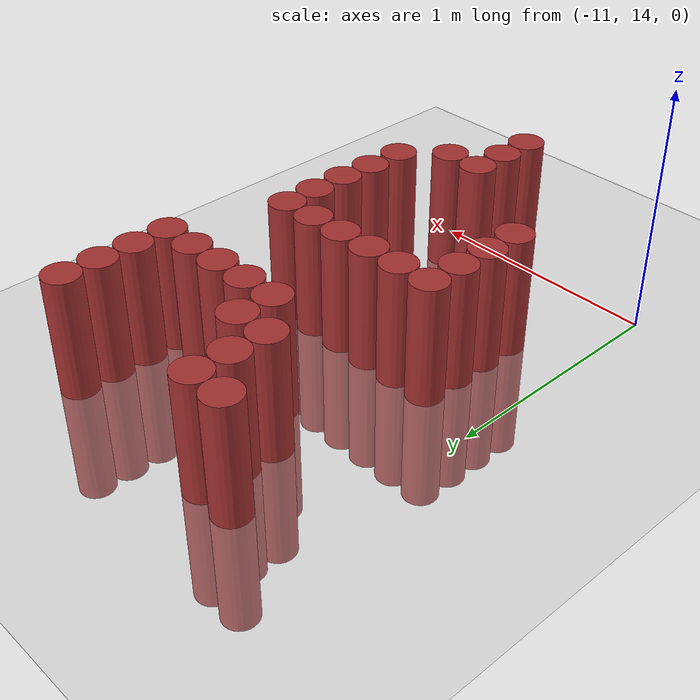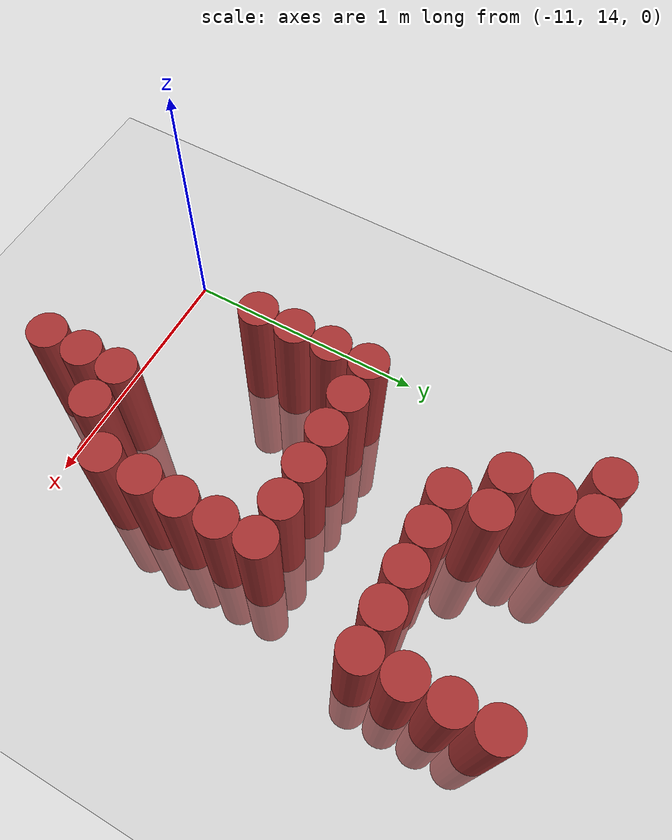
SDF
<sdf version="1.6">
 <world name="default">
  <model name="ground_plane">
   <static>1</static>
   <link name="link">
    <collision name="collision">
     <geometry><plane><normal>0 0 1</normal><size>100 100</size></plane></geometry>
     <surface><friction><ode><mu>100</mu><mu2>50</mu2></ode></friction></surface>
    </collision>
    <visual name="visual">
     <cast_shadows>0</cast_shadows>
     <geometry><plane><normal>0 0 1</normal><size>100 100</size></plane></geometry>
     <material>
      <script><uri>file://media/materials/scripts/gazebo.material</uri><name>Gazebo/Grey</name></script>
     </material>
    </visual>
   </link>
  </model>
  <model name="unit_cylinder_335">
   <static>1</static>
   <pose>-10.725 14.475 0 0 -0 0</pose>
   <link name="link">
    <inertial>
     <mass>1</mass>
     <inertia><ixx>0.145833</ixx><ixy>0</ixy><ixz>0</ixz><iyy>0.145833</iyy><iyz>0</iyz><izz>0.125</izz></inertia>
    </inertial>
    <collision name="collision">
     <geometry><cylinder><radius>0.075</radius><length>1</length></cylinder></geometry>
    </collision>
    <visual name="visual">
     <geometry><cylinder><radius>0.075</radius><length>1</length></cylinder></geometry>
     <material><ambient>0.648 0.192 0.192 1</ambient><diffuse>0.648 0.192 0.192 1</diffuse></material>
     <material>
      <script><name>Gazebo/Grey</name><uri>file://media/materials/scripts/gazebo.material</uri></script>
     </material>
    </visual>
   </link>
  </model>
  <model name="unit_cylinder_336">
   <static>1</static>
   <pose>-10.725 14.625 0 0 -0 0</pose>
   <link name="link">
    <inertial>
     <mass>1</mass>
     <inertia><ixx>0.145833</ixx><ixy>0</ixy><ixz>0</ixz><iyy>0.145833</iyy><iyz>0</iyz><izz>0.125</izz></inertia>
    </inertial>
    <collision name="collision">
     <geometry><cylinder><radius>0.075</radius><length>1</length></cylinder></geometry>
    </collision>
    <visual name="visual">
     <geometry><cylinder><radius>0.075</radius><length>1</length></cylinder></geometry>
     <material><ambient>0.648 0.192 0.192 1</ambient><diffuse>0.648 0.192 0.192 1</diffuse></material>
     <material>
      <script><name>Gazebo/Grey</name><uri>file://media/materials/scripts/gazebo.material</uri></script>
     </material>
    </visual>
   </link>
  </model>
  <model name="unit_cylinder_337">
   <static>1</static>
   <pose>-10.725 14.775 0 0 -0 0</pose>
   <link name="link">
    <inertial>
     <mass>1</mass>
     <inertia><ixx>0.145833</ixx><ixy>0</ixy><ixz>0</ixz><iyy>0.145833</iyy><iyz>0</iyz><izz>0.125</izz></inertia>
    </inertial>
    <collision name="collision">
     <geometry><cylinder><radius>0.075</radius><length>1</length></cylinder></geometry>
    </collision>
    <visual name="visual">
     <geometry><cylinder><radius>0.075</radius><length>1</length></cylinder></geometry>
     <material><ambient>0.648 0.192 0.192 1</ambient><diffuse>0.648 0.192 0.192 1</diffuse></material>
     <material>
      <script><name>Gazebo/Grey</name><uri>file://media/materials/scripts/gazebo.material</uri></script>
     </material>
    </visual>
   </link>
  </model>
  <model name="unit_cylinder_338">
   <static>1</static>
   <pose>-10.725 14.925 0 0 -0 0</pose>
   <link name="link">
    <inertial>
     <mass>1</mass>
     <inertia><ixx>0.145833</ixx><ixy>0</ixy><ixz>0</ixz><iyy>0.145833</iyy><iyz>0</iyz><izz>0.125</izz></inertia>
    </inertial>
    <collision name="collision">
     <geometry><cylinder><radius>0.075</radius><length>1</length></cylinder></geometry>
    </collision>
    <visual name="visual">
     <geometry><cylinder><radius>0.075</radius><length>1</length></cylinder></geometry>
     <material><ambient>0.648 0.192 0.192 1</ambient><diffuse>0.648 0.192 0.192 1</diffuse></material>
     <material>
      <script><name>Gazebo/Grey</name><uri>file://media/materials/scripts/gazebo.material</uri></script>
     </material>
    </visual>
   </link>
  </model>
  <model name="unit_cylinder_339">
   <static>1</static>
   <pose>-10.725 15.825 0 0 -0 0</pose>
   <link name="link">
    <inertial>
     <mass>1</mass>
     <inertia><ixx>0.145833</ixx><ixy>0</ixy><ixz>0</ixz><iyy>0.145833</iyy><iyz>0</iyz><izz>0.125</izz></inertia>
    </inertial>
    <collision name="collision">
     <geometry><cylinder><radius>0.075</radius><length>1</length></cylinder></geometry>
    </collision>
    <visual name="visual">
     <geometry><cylinder><radius>0.075</radius><length>1</length></cylinder></geometry>
     <material><ambient>0.648 0.192 0.192 1</ambient><diffuse>0.648 0.192 0.192 1</diffuse></material>
     <material>
      <script><name>Gazebo/Grey</name><uri>file://media/materials/scripts/gazebo.material</uri></script>
     </material>
    </visual>
   </link>
  </model>
  <model name="unit_cylinder_361">
   <static>1</static>
   <pose>-10.575 14.925 0 0 -0 0</pose>
   <link name="link">
    <inertial>
     <mass>1</mass>
     <inertia><ixx>0.145833</ixx><ixy>0</ixy><ixz>0</ixz><iyy>0.145833</iyy><iyz>0</iyz><izz>0.125</izz></inertia>
    </inertial>
    <collision name="collision">
     <geometry><cylinder><radius>0.075</radius><length>1</length></cylinder></geometry>
    </collision>
    <visual name="visual">
     <geometry><cylinder><radius>0.075</radius><length>1</length></cylinder></geometry>
     <material><ambient>0.648 0.192 0.192 1</ambient><diffuse>0.648 0.192 0.192 1</diffuse></material>
     <material>
      <script><name>Gazebo/Grey</name><uri>file://media/materials/scripts/gazebo.material</uri></script>
     </material>
    </visual>
   </link>
  </model>
  <model name="unit_cylinder_362">
   <static>1</static>
   <pose>-10.575 15.525 0 0 -0 0</pose>
   <link name="link">
    <inertial>
     <mass>1</mass>
     <inertia><ixx>0.145833</ixx><ixy>0</ixy><ixz>0</ixz><iyy>0.145833</iyy><iyz>0</iyz><izz>0.125</izz></inertia>
    </inertial>
    <collision name="collision">
     <geometry><cylinder><radius>0.075</radius><length>1</length></cylinder></geometry>
    </collision>
    <visual name="visual">
     <geometry><cylinder><radius>0.075</radius><length>1</length></cylinder></geometry>
     <material><ambient>0.648 0.192 0.192 1</ambient><diffuse>0.648 0.192 0.192 1</diffuse></material>
     <material>
      <script><name>Gazebo/Grey</name><uri>file://media/materials/scripts/gazebo.material</uri></script>
     </material>
    </visual>
   </link>
  </model>
  <model name="unit_cylinder_363">
   <static>1</static>
   <pose>-10.575 15.675 0 0 -0 0</pose>
   <link name="link">
    <inertial>
     <mass>1</mass>
     <inertia><ixx>0.145833</ixx><ixy>0</ixy><ixz>0</ixz><iyy>0.145833</iyy><iyz>0</iyz><izz>0.125</izz></inertia>
    </inertial>
    <collision name="collision">
     <geometry><cylinder><radius>0.075</radius><length>1</length></cylinder></geometry>
    </collision>
    <visual name="visual">
     <geometry><cylinder><radius>0.075</radius><length>1</length></cylinder></geometry>
     <material><ambient>0.648 0.192 0.192 1</ambient><diffuse>0.648 0.192 0.192 1</diffuse></material>
     <material>
      <script><name>Gazebo/Grey</name><uri>file://media/materials/scripts/gazebo.material</uri></script>
     </material>
    </visual>
   </link>
  </model>
  <model name="unit_cylinder_364">
   <static>1</static>
   <pose>-10.575 15.825 0 0 -0 0</pose>
   <link name="link">
    <inertial>
     <mass>1</mass>
     <inertia><ixx>0.145833</ixx><ixy>0</ixy><ixz>0</ixz><iyy>0.145833</iyy><iyz>0</iyz><izz>0.125</izz></inertia>
    </inertial>
    <collision name="collision">
     <geometry><cylinder><radius>0.075</radius><length>1</length></cylinder></geometry>
    </collision>
    <visual name="visual">
     <geometry><cylinder><radius>0.075</radius><length>1</length></cylinder></geometry>
     <material><ambient>0.648 0.192 0.192 1</ambient><diffuse>0.648 0.192 0.192 1</diffuse></material>
     <material>
      <script><name>Gazebo/Grey</name><uri>file://media/materials/scripts/gazebo.material</uri></script>
     </material>
    </visual>
   </link>
  </model>
  <model name="unit_cylinder_376">
   <static>1</static>
   <pose>-10.425 14.925 0 0 -0 0</pose>
   <link name="link">
    <inertial>
     <mass>1</mass>
     <inertia><ixx>0.145833</ixx><ixy>0</ixy><ixz>0</ixz><iyy>0.145833</iyy><iyz>0</iyz><izz>0.125</izz></inertia>
    </inertial>
    <collision name="collision">
     <geometry><cylinder><radius>0.075</radius><length>1</length></cylinder></geometry>
    </collision>
    <visual name="visual">
     <geometry><cylinder><radius>0.075</radius><length>1</length></cylinder></geometry>
     <material><ambient>0.648 0.192 0.192 1</ambient><diffuse>0.648 0.192 0.192 1</diffuse></material>
     <material>
      <script><name>Gazebo/Grey</name><uri>file://media/materials/scripts/gazebo.material</uri></script>
     </material>
    </visual>
   </link>
  </model>
  <model name="unit_cylinder_377">
   <static>1</static>
   <pose>-10.425 15.375 0 0 -0 0</pose>
   <link name="link">
    <inertial>
     <mass>1</mass>
     <inertia><ixx>0.145833</ixx><ixy>0</ixy><ixz>0</ixz><iyy>0.145833</iyy><iyz>0</iyz><izz>0.125</izz></inertia>
    </inertial>
    <collision name="collision">
     <geometry><cylinder><radius>0.075</radius><length>1</length></cylinder></geometry>
    </collision>
    <visual name="visual">
     <geometry><cylinder><radius>0.075</radius><length>1</length></cylinder></geometry>
     <material><ambient>0.648 0.192 0.192 1</ambient><diffuse>0.648 0.192 0.192 1</diffuse></material>
     <material>
      <script><name>Gazebo/Grey</name><uri>file://media/materials/scripts/gazebo.material</uri></script>
     </material>
    </visual>
   </link>
  </model>
  <model name="unit_cylinder_378">
   <static>1</static>
   <pose>-10.425 15.525 0 0 -0 0</pose>
   <link name="link">
    <inertial>
     <mass>1</mass>
     <inertia><ixx>0.145833</ixx><ixy>0</ixy><ixz>0</ixz><iyy>0.145833</iyy><iyz>0</iyz><izz>0.125</izz></inertia>
    </inertial>
    <collision name="collision">
     <geometry><cylinder><radius>0.075</radius><length>1</length></cylinder></geometry>
    </collision>
    <visual name="visual">
     <geometry><cylinder><radius>0.075</radius><length>1</length></cylinder></geometry>
     <material><ambient>0.648 0.192 0.192 1</ambient><diffuse>0.648 0.192 0.192 1</diffuse></material>
     <material>
      <script><name>Gazebo/Grey</name><uri>file://media/materials/scripts/gazebo.material</uri></script>
     </material>
    </visual>
   </link>
  </model>
  <model name="unit_cylinder_397">
   <static>1</static>
   <pose>-10.275 13.875 0 0 -0 0</pose>
   <link name="link">
    <inertial>
     <mass>1</mass>
     <inertia><ixx>0.145833</ixx><ixy>0</ixy><ixz>0</ixz><iyy>0.145833</iyy><iyz>0</iyz><izz>0.125</izz></inertia>
    </inertial>
    <collision name="collision">
     <geometry><cylinder><radius>0.075</radius><length>1</length></cylinder></geometry>
    </collision>
    <visual name="visual">
     <geometry><cylinder><radius>0.075</radius><length>1</length></cylinder></geometry>
     <material><ambient>0.648 0.192 0.192 1</ambient><diffuse>0.648 0.192 0.192 1</diffuse></material>
     <material>
      <script><name>Gazebo/Grey</name><uri>file://media/materials/scripts/gazebo.material</uri></script>
     </material>
    </visual>
   </link>
  </model>
  <model name="unit_cylinder_398">
   <static>1</static>
   <pose>-10.275 14.025 0 0 -0 0</pose>
   <link name="link">
    <inertial>
     <mass>1</mass>
     <inertia><ixx>0.145833</ixx><ixy>0</ixy><ixz>0</ixz><iyy>0.145833</iyy><iyz>0</iyz><izz>0.125</izz></inertia>
    </inertial>
    <collision name="collision">
     <geometry><cylinder><radius>0.075</radius><length>1</length></cylinder></geometry>
    </collision>
    <visual name="visual">
     <geometry><cylinder><radius>0.075</radius><length>1</length></cylinder></geometry>
     <material><ambient>0.648 0.192 0.192 1</ambient><diffuse>0.648 0.192 0.192 1</diffuse></material>
     <material>
      <script><name>Gazebo/Grey</name><uri>file://media/materials/scripts/gazebo.material</uri></script>
     </material>
    </visual>
   </link>
  </model>
  <model name="unit_cylinder_399">
   <static>1</static>
   <pose>-10.275 14.175 0 0 -0 0</pose>
   <link name="link">
    <inertial>
     <mass>1</mass>
     <inertia><ixx>0.145833</ixx><ixy>0</ixy><ixz>0</ixz><iyy>0.145833</iyy><iyz>0</iyz><izz>0.125</izz></inertia>
    </inertial>
    <collision name="collision">
     <geometry><cylinder><radius>0.075</radius><length>1</length></cylinder></geometry>
    </collision>
    <visual name="visual">
     <geometry><cylinder><radius>0.075</radius><length>1</length></cylinder></geometry>
     <material><ambient>0.648 0.192 0.192 1</ambient><diffuse>0.648 0.192 0.192 1</diffuse></material>
     <material>
      <script><name>Gazebo/Grey</name><uri>file://media/materials/scripts/gazebo.material</uri></script>
     </material>
    </visual>
   </link>
  </model>
  <model name="unit_cylinder_400">
   <static>1</static>
   <pose>-10.275 14.925 0 0 -0 0</pose>
   <link name="link">
    <inertial>
     <mass>1</mass>
     <inertia><ixx>0.145833</ixx><ixy>0</ixy><ixz>0</ixz><iyy>0.145833</iyy><iyz>0</iyz><izz>0.125</izz></inertia>
    </inertial>
    <collision name="collision">
     <geometry><cylinder><radius>0.075</radius><length>1</length></cylinder></geometry>
    </collision>
    <visual name="visual">
     <geometry><cylinder><radius>0.075</radius><length>1</length></cylinder></geometry>
     <material><ambient>0.648 0.192 0.192 1</ambient><diffuse>0.648 0.192 0.192 1</diffuse></material>
     <material>
      <script><name>Gazebo/Grey</name><uri>file://media/materials/scripts/gazebo.material</uri></script>
     </material>
    </visual>
   </link>
  </model>
  <model name="unit_cylinder_401">
   <static>1</static>
   <pose>-10.275 15.375 0 0 -0 0</pose>
   <link name="link">
    <inertial>
     <mass>1</mass>
     <inertia><ixx>0.145833</ixx><ixy>0</ixy><ixz>0</ixz><iyy>0.145833</iyy><iyz>0</iyz><izz>0.125</izz></inertia>
    </inertial>
    <collision name="collision">
     <geometry><cylinder><radius>0.075</radius><length>1</length></cylinder></geometry>
    </collision>
    <visual name="visual">
     <geometry><cylinder><radius>0.075</radius><length>1</length></cylinder></geometry>
     <material><ambient>0.648 0.192 0.192 1</ambient><diffuse>0.648 0.192 0.192 1</diffuse></material>
     <material>
      <script><name>Gazebo/Grey</name><uri>file://media/materials/scripts/gazebo.material</uri></script>
     </material>
    </visual>
   </link>
  </model>
  <model name="unit_cylinder_413">
   <static>1</static>
   <pose>-10.125 14.175 0 0 -0 0</pose>
   <link name="link">
    <inertial>
     <mass>1</mass>
     <inertia><ixx>0.145833</ixx><ixy>0</ixy><ixz>0</ixz><iyy>0.145833</iyy><iyz>0</iyz><izz>0.125</izz></inertia>
    </inertial>
    <collision name="collision">
     <geometry><cylinder><radius>0.075</radius><length>1</length></cylinder></geometry>
    </collision>
    <visual name="visual">
     <geometry><cylinder><radius>0.075</radius><length>1</length></cylinder></geometry>
     <material><ambient>0.648 0.192 0.192 1</ambient><diffuse>0.648 0.192 0.192 1</diffuse></material>
     <material>
      <script><name>Gazebo/Grey</name><uri>file://media/materials/scripts/gazebo.material</uri></script>
     </material>
    </visual>
   </link>
  </model>
  <model name="unit_cylinder_414">
   <static>1</static>
   <pose>-10.125 14.925 0 0 -0 0</pose>
   <link name="link">
    <inertial>
     <mass>1</mass>
     <inertia><ixx>0.145833</ixx><ixy>0</ixy><ixz>0</ixz><iyy>0.145833</iyy><iyz>0</iyz><izz>0.125</izz></inertia>
    </inertial>
    <collision name="collision">
     <geometry><cylinder><radius>0.075</radius><length>1</length></cylinder></geometry>
    </collision>
    <visual name="visual">
     <geometry><cylinder><radius>0.075</radius><length>1</length></cylinder></geometry>
     <material><ambient>0.648 0.192 0.192 1</ambient><diffuse>0.648 0.192 0.192 1</diffuse></material>
     <material>
      <script><name>Gazebo/Grey</name><uri>file://media/materials/scripts/gazebo.material</uri></script>
     </material>
    </visual>
   </link>
  </model>
  <model name="unit_cylinder_415">
   <static>1</static>
   <pose>-10.125 15.375 0 0 -0 0</pose>
   <link name="link">
    <inertial>
     <mass>1</mass>
     <inertia><ixx>0.145833</ixx><ixy>0</ixy><ixz>0</ixz><iyy>0.145833</iyy><iyz>0</iyz><izz>0.125</izz></inertia>
    </inertial>
    <collision name="collision">
     <geometry><cylinder><radius>0.075</radius><length>1</length></cylinder></geometry>
    </collision>
    <visual name="visual">
     <geometry><cylinder><radius>0.075</radius><length>1</length></cylinder></geometry>
     <material><ambient>0.648 0.192 0.192 1</ambient><diffuse>0.648 0.192 0.192 1</diffuse></material>
     <material>
      <script><name>Gazebo/Grey</name><uri>file://media/materials/scripts/gazebo.material</uri></script>
     </material>
    </visual>
   </link>
  </model>
  <model name="unit_cylinder_426">
   <static>1</static>
   <pose>-9.975 14.325 0 0 -0 0</pose>
   <link name="link">
    <inertial>
     <mass>1</mass>
     <inertia><ixx>0.145833</ixx><ixy>0</ixy><ixz>0</ixz><iyy>0.145833</iyy><iyz>0</iyz><izz>0.125</izz></inertia>
    </inertial>
    <collision name="collision">
     <geometry><cylinder><radius>0.075</radius><length>1</length></cylinder></geometry>
    </collision>
    <visual name="visual">
     <geometry><cylinder><radius>0.075</radius><length>1</length></cylinder></geometry>
     <material><ambient>0.648 0.192 0.192 1</ambient><diffuse>0.648 0.192 0.192 1</diffuse></material>
     <material>
      <script><name>Gazebo/Grey</name><uri>file://media/materials/scripts/gazebo.material</uri></script>
     </material>
    </visual>
   </link>
  </model>
  <model name="unit_cylinder_427">
   <static>1</static>
   <pose>-9.975 14.925 0 0 -0 0</pose>
   <link name="link">
    <inertial>
     <mass>1</mass>
     <inertia><ixx>0.145833</ixx><ixy>0</ixy><ixz>0</ixz><iyy>0.145833</iyy><iyz>0</iyz><izz>0.125</izz></inertia>
    </inertial>
    <collision name="collision">
     <geometry><cylinder><radius>0.075</radius><length>1</length></cylinder></geometry>
    </collision>
    <visual name="visual">
     <geometry><cylinder><radius>0.075</radius><length>1</length></cylinder></geometry>
     <material><ambient>0.648 0.192 0.192 1</ambient><diffuse>0.648 0.192 0.192 1</diffuse></material>
     <material>
      <script><name>Gazebo/Grey</name><uri>file://media/materials/scripts/gazebo.material</uri></script>
     </material>
    </visual>
   </link>
  </model>
  <model name="unit_cylinder_428">
   <static>1</static>
   <pose>-9.975 15.375 0 0 -0 0</pose>
   <link name="link">
    <inertial>
     <mass>1</mass>
     <inertia><ixx>0.145833</ixx><ixy>0</ixy><ixz>0</ixz><iyy>0.145833</iyy><iyz>0</iyz><izz>0.125</izz></inertia>
    </inertial>
    <collision name="collision">
     <geometry><cylinder><radius>0.075</radius><length>1</length></cylinder></geometry>
    </collision>
    <visual name="visual">
     <geometry><cylinder><radius>0.075</radius><length>1</length></cylinder></geometry>
     <material><ambient>0.648 0.192 0.192 1</ambient><diffuse>0.648 0.192 0.192 1</diffuse></material>
     <material>
      <script><name>Gazebo/Grey</name><uri>file://media/materials/scripts/gazebo.material</uri></script>
     </material>
    </visual>
   </link>
  </model>
  <model name="unit_cylinder_447">
   <static>1</static>
   <pose>-9.825 15.375 0 0 -0 0</pose>
   <link name="link">
    <inertial>
     <mass>1</mass>
     <inertia><ixx>0.145833</ixx><ixy>0</ixy><ixz>0</ixz><iyy>0.145833</iyy><iyz>0</iyz><izz>0.125</izz></inertia>
    </inertial>
    <collision name="collision">
     <geometry><cylinder><radius>0.075</radius><length>1</length></cylinder></geometry>
    </collision>
    <visual name="visual">
     <geometry><cylinder><radius>0.075</radius><length>1</length></cylinder></geometry>
     <material><ambient>0.648 0.192 0.192 1</ambient><diffuse>0.648 0.192 0.192 1</diffuse></material>
     <material>
      <script><name>Gazebo/Grey</name><uri>file://media/materials/scripts/gazebo.material</uri></script>
     </material>
    </visual>
   </link>
  </model>
  <model name="unit_cylinder_448">
   <static>1</static>
   <pose>-9.825 15.525 0 0 -0 0</pose>
   <link name="link">
    <inertial>
     <mass>1</mass>
     <inertia><ixx>0.145833</ixx><ixy>0</ixy><ixz>0</ixz><iyy>0.145833</iyy><iyz>0</iyz><izz>0.125</izz></inertia>
    </inertial>
    <collision name="collision">
     <geometry><cylinder><radius>0.075</radius><length>1</length></cylinder></geometry>
    </collision>
    <visual name="visual">
     <geometry><cylinder><radius>0.075</radius><length>1</length></cylinder></geometry>
     <material><ambient>0.648 0.192 0.192 1</ambient><diffuse>0.648 0.192 0.192 1</diffuse></material>
     <material>
      <script><name>Gazebo/Grey</name><uri>file://media/materials/scripts/gazebo.material</uri></script>
     </material>
    </visual>
   </link>
  </model>
  <model name="unit_cylinder_449">
   <static>1</static>
   <pose>-9.825 15.675 0 0 -0 0</pose>
   <link name="link">
    <inertial>
     <mass>1</mass>
     <inertia><ixx>0.145833</ixx><ixy>0</ixy><ixz>0</ixz><iyy>0.145833</iyy><iyz>0</iyz><izz>0.125</izz></inertia>
    </inertial>
    <collision name="collision">
     <geometry><cylinder><radius>0.075</radius><length>1</length></cylinder></geometry>
    </collision>
    <visual name="visual">
     <geometry><cylinder><radius>0.075</radius><length>1</length></cylinder></geometry>
     <material><ambient>0.648 0.192 0.192 1</ambient><diffuse>0.648 0.192 0.192 1</diffuse></material>
     <material>
      <script><name>Gazebo/Grey</name><uri>file://media/materials/scripts/gazebo.material</uri></script>
     </material>
    </visual>
   </link>
  </model>
  <model name="unit_cylinder_450">
   <static>1</static>
   <pose>-9.825 15.825 0 0 -0 0</pose>
   <link name="link">
    <inertial>
     <mass>1</mass>
     <inertia><ixx>0.145833</ixx><ixy>0</ixy><ixz>0</ixz><iyy>0.145833</iyy><iyz>0</iyz><izz>0.125</izz></inertia>
    </inertial>
    <collision name="collision">
     <geometry><cylinder><radius>0.075</radius><length>1</length></cylinder></geometry>
    </collision>
    <visual name="visual">
     <geometry><cylinder><radius>0.075</radius><length>1</length></cylinder></geometry>
     <material><ambient>0.648 0.192 0.192 1</ambient><diffuse>0.648 0.192 0.192 1</diffuse></material>
     <material>
      <script><name>Gazebo/Grey</name><uri>file://media/materials/scripts/gazebo.material</uri></script>
     </material>
    </visual>
   </link>
  </model>
  <model name="unit_cylinder_414_clone">
   <static>1</static>
   <pose>-9.9703 14.7801 0 0 -0 0</pose>
   <link name="link">
    <inertial>
     <mass>1</mass>
     <inertia><ixx>0.145833</ixx><ixy>0</ixy><ixz>0</ixz><iyy>0.145833</iyy><iyz>0</iyz><izz>0.125</izz></inertia>
    </inertial>
    <collision name="collision">
     <geometry><cylinder><radius>0.075</radius><length>1</length></cylinder></geometry>
    </collision>
    <visual name="visual">
     <geometry><cylinder><radius>0.075</radius><length>1</length></cylinder></geometry>
     <material><ambient>0.648 0.192 0.192 1</ambient><diffuse>0.648 0.192 0.192 1</diffuse></material>
     <material>
      <script><name>Gazebo/Grey</name><uri>file://media/materials/scripts/gazebo.material</uri></script>
     </material>
    </visual>
   </link>
  </model>
  <model name="unit_cylinder_414_clone_0">
   <static>1</static>
   <pose>-9.96799 14.6306 0 0 -0 0</pose>
   <link name="link">
    <inertial>
     <mass>1</mass>
     <inertia><ixx>0.145833</ixx><ixy>0</ixy><ixz>0</ixz><iyy>0.145833</iyy><iyz>0</iyz><izz>0.125</izz></inertia>
    </inertial>
    <collision name="collision">
     <geometry><cylinder><radius>0.075</radius><length>1</length></cylinder></geometry>
    </collision>
    <visual name="visual">
     <geometry><cylinder><radius>0.075</radius><length>1</length></cylinder></geometry>
     <material><ambient>0.648 0.192 0.192 1</ambient><diffuse>0.648 0.192 0.192 1</diffuse></material>
     <material>
      <script><name>Gazebo/Grey</name><uri>file://media/materials/scripts/gazebo.material</uri></script>
     </material>
    </visual>
   </link>
  </model>
  <model name="unit_cylinder_414_clone_1">
   <static>1</static>
   <pose>-9.9738 14.4844 0 0 -0 0</pose>
   <link name="link">
    <inertial>
     <mass>1</mass>
     <inertia><ixx>0.145833</ixx><ixy>0</ixy><ixz>0</ixz><iyy>0.145833</iyy><iyz>0</iyz><izz>0.125</izz></inertia>
    </inertial>
    <collision name="collision">
     <geometry><cylinder><radius>0.075</radius><length>1</length></cylinder></geometry>
    </collision>
    <visual name="visual">
     <geometry><cylinder><radius>0.075</radius><length>1</length></cylinder></geometry>
     <material><ambient>0.648 0.192 0.192 1</ambient><diffuse>0.648 0.192 0.192 1</diffuse></material>
     <material>
      <script><name>Gazebo/Grey</name><uri>file://media/materials/scripts/gazebo.material</uri></script>
     </material>
    </visual>
   </link>
  </model>
 </world>
</sdf>
